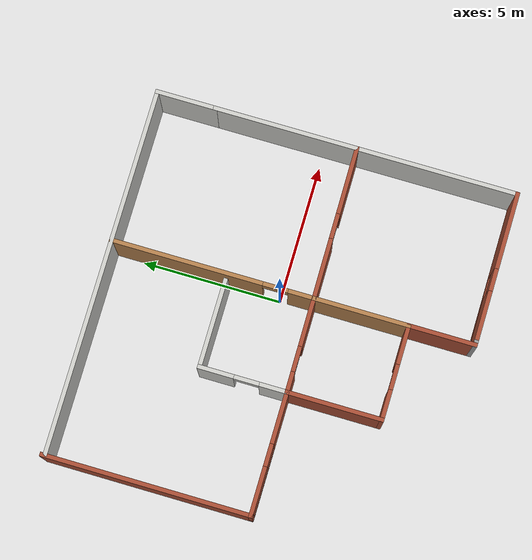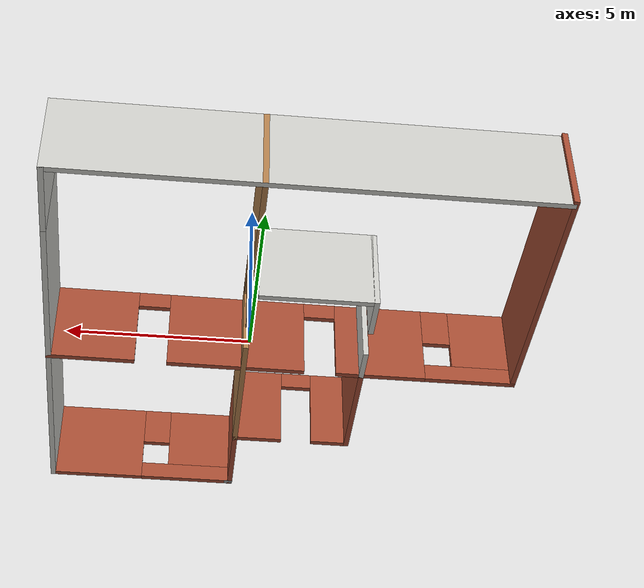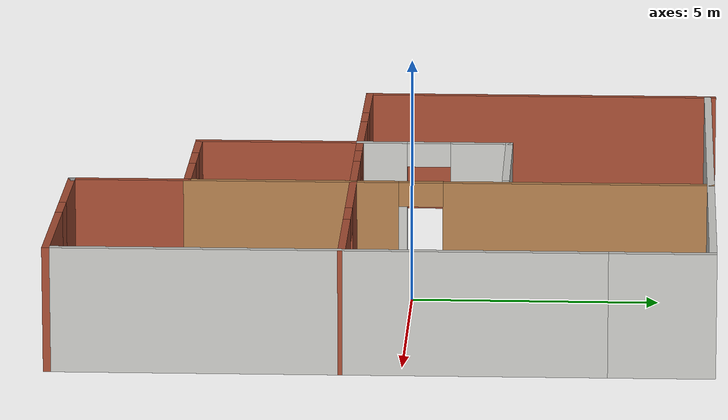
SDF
<?xml version='1.0'?>
<sdf version='1.6'>
  <model name='Building'>
    <pose frame=''>-1.04111 -0.383958 0 0 -0 0</pose>
    <link name='Wall_0'>
      <collision name='Wall_0_Collision'>
        <geometry>
          <box>
            <size>13.25 0.15 2.5</size>
          </box>
        </geometry>
        <pose frame=''>0 0 1.25 0 -0 0</pose>
      </collision>
      <visual name='Wall_0_Visual'>
        <pose frame=''>0 0 1.25 0 -0 0</pose>
        <geometry>
          <box>
            <size>13.25 0.15 2.5</size>
          </box>
        </geometry>
        <material>
          <script>
            <uri>file://media/materials/scripts/gazebo.material</uri>
            <name>Gazebo/CeilingTiled</name>
          </script>
          <ambient>0.435294 0.796078 0.67451 1</ambient>
        </material>
        <meta>
          <layer>0</layer>
        </meta>
      </visual>
      <pose frame=''>0.024727 6.425 0 0 -0 0</pose>
    </link>
    <link name='Wall_1'>
      <collision name='Wall_1_Collision'>
        <geometry>
          <box>
            <size>2.25 0.15 2.5</size>
          </box>
        </geometry>
        <pose frame=''>0 0 1.25 0 -0 0</pose>
      </collision>
      <visual name='Wall_1_Visual'>
        <pose frame=''>0 0 1.25 0 -0 0</pose>
        <geometry>
          <box>
            <size>2.25 0.15 2.5</size>
          </box>
        </geometry>
        <material>
          <script>
            <uri>file://media/materials/scripts/gazebo.material</uri>
            <name>Gazebo/CeilingTiled</name>
          </script>
          <ambient>0.760784 0.662745 0.627451 1</ambient>
        </material>
        <meta>
          <layer>0</layer>
        </meta>
      </visual>
      <pose frame=''>6.57473 5.375 0 0 0 -1.5708</pose>
    </link>
    <link name='Wall_11'>
      <pose frame=''>2.17478 -0.799463 0 0 0 -3.13579</pose>
      <visual name='Wall_11_Visual_0'>
        <pose frame=''>-3.24354 0 1.25 0 -0 0</pose>
        <geometry>
          <box>
            <size>2.46318 0.15 2.5</size>
          </box>
        </geometry>
        <material>
          <script>
            <uri>file://media/materials/scripts/gazebo.material</uri>
            <name>Gazebo/Bricks</name>
          </script>
          <ambient>1 1 1 1</ambient>
        </material>
        <meta>
          <layer>0</layer>
        </meta>
      </visual>
      <collision name='Wall_11_Collision_0'>
        <geometry>
          <box>
            <size>2.46318 0.15 2.5</size>
          </box>
        </geometry>
        <pose frame=''>-3.24354 0 1.25 0 -0 0</pose>
      </collision>
      <visual name='Wall_11_Visual_1'>
        <pose frame=''>0.828788 0 1.25 0 -0 0</pose>
        <geometry>
          <box>
            <size>3.88147 0.15 2.5</size>
          </box>
        </geometry>
        <material>
          <script>
            <uri>file://media/materials/scripts/gazebo.material</uri>
            <name>Gazebo/Bricks</name>
          </script>
          <ambient>1 1 1 1</ambient>
        </material>
        <meta>
          <layer>0</layer>
        </meta>
      </visual>
      <collision name='Wall_11_Collision_1'>
        <geometry>
          <box>
            <size>3.88147 0.15 2.5</size>
          </box>
        </geometry>
        <pose frame=''>0.828788 0 1.25 0 -0 0</pose>
      </collision>
      <visual name='Wall_11_Visual_2'>
        <pose frame=''>4.07233 0 1.25 0 -0 0</pose>
        <geometry>
          <box>
            <size>0.805607 0.15 2.5</size>
          </box>
        </geometry>
        <material>
          <script>
            <uri>file://media/materials/scripts/gazebo.material</uri>
            <name>Gazebo/Bricks</name>
          </script>
          <ambient>1 1 1 1</ambient>
        </material>
        <meta>
          <layer>0</layer>
        </meta>
      </visual>
      <collision name='Wall_11_Collision_2'>
        <geometry>
          <box>
            <size>0.805607 0.15 2.5</size>
          </box>
        </geometry>
        <pose frame=''>4.07233 0 1.25 0 -0 0</pose>
      </collision>
      <visual name='Wall_11_Visual_3'>
        <pose frame=''>-1.56195 0 2.25 0 -0 0</pose>
        <geometry>
          <box>
            <size>0.9 0.15 0.5</size>
          </box>
        </geometry>
        <material>
          <script>
            <uri>file://media/materials/scripts/gazebo.material</uri>
            <name>Gazebo/Bricks</name>
          </script>
          <ambient>1 1 1 1</ambient>
        </material>
        <meta>
          <layer>0</layer>
        </meta>
      </visual>
      <collision name='Wall_11_Collision_3'>
        <geometry>
          <box>
            <size>0.9 0.15 0.5</size>
          </box>
        </geometry>
        <pose frame=''>-1.56195 0 2.25 0 -0 0</pose>
      </collision>
      <visual name='Wall_11_Visual_4'>
        <pose frame=''>3.21952 0 2.25 0 -0 0</pose>
        <geometry>
          <box>
            <size>0.9 0.15 0.5</size>
          </box>
        </geometry>
        <material>
          <script>
            <uri>file://media/materials/scripts/gazebo.material</uri>
            <name>Gazebo/Bricks</name>
          </script>
          <ambient>1 1 1 1</ambient>
        </material>
        <meta>
          <layer>0</layer>
        </meta>
      </visual>
      <collision name='Wall_11_Collision_4'>
        <geometry>
          <box>
            <size>0.9 0.15 0.5</size>
          </box>
        </geometry>
        <pose frame=''>3.21952 0 2.25 0 -0 0</pose>
      </collision>
    </link>
    <link name='Wall_12'>
      <pose frame=''>-2.22527 0.725 0 0 -0 1.5708</pose>
      <visual name='Wall_12_Visual_0'>
        <pose frame=''>-1.09587 0 1.25 0 -0 0</pose>
        <geometry>
          <box>
            <size>1.05826 0.15 2.5</size>
          </box>
        </geometry>
        <material>
          <script>
            <uri>file://media/materials/scripts/gazebo.material</uri>
            <name>Gazebo/CeilingTiled</name>
          </script>
          <ambient>1 1 1 1</ambient>
        </material>
        <meta>
          <layer>0</layer>
        </meta>
      </visual>
      <collision name='Wall_12_Collision_0'>
        <geometry>
          <box>
            <size>1.05826 0.15 2.5</size>
          </box>
        </geometry>
        <pose frame=''>-1.09587 0 1.25 0 -0 0</pose>
      </collision>
      <visual name='Wall_12_Visual_1'>
        <pose frame=''>0.979128 0 1.25 0 -0 0</pose>
        <geometry>
          <box>
            <size>1.29174 0.15 2.5</size>
          </box>
        </geometry>
        <material>
          <script>
            <uri>file://media/materials/scripts/gazebo.material</uri>
            <name>Gazebo/CeilingTiled</name>
          </script>
          <ambient>1 1 1 1</ambient>
        </material>
        <meta>
          <layer>0</layer>
        </meta>
      </visual>
      <collision name='Wall_12_Collision_1'>
        <geometry>
          <box>
            <size>1.29174 0.15 2.5</size>
          </box>
        </geometry>
        <pose frame=''>0.979128 0 1.25 0 -0 0</pose>
      </collision>
      <visual name='Wall_12_Visual_2'>
        <pose frame=''>-0.116744 0 2.25 0 -0 0</pose>
        <geometry>
          <box>
            <size>0.9 0.15 0.5</size>
          </box>
        </geometry>
        <material>
          <script>
            <uri>file://media/materials/scripts/gazebo.material</uri>
            <name>Gazebo/CeilingTiled</name>
          </script>
          <ambient>1 1 1 1</ambient>
        </material>
        <meta>
          <layer>0</layer>
        </meta>
      </visual>
      <collision name='Wall_12_Collision_2'>
        <geometry>
          <box>
            <size>0.9 0.15 0.5</size>
          </box>
        </geometry>
        <pose frame=''>-0.116744 0 2.25 0 -0 0</pose>
      </collision>
    </link>
    <link name='Wall_13'>
      <collision name='Wall_13_Collision'>
        <geometry>
          <box>
            <size>3.25 0.15 2.5</size>
          </box>
        </geometry>
        <pose frame=''>0 0 1.25 0 -0 0</pose>
      </collision>
      <visual name='Wall_13_Visual'>
        <pose frame=''>0 0 1.25 0 -0 0</pose>
        <geometry>
          <box>
            <size>3.25 0.15 2.5</size>
          </box>
        </geometry>
        <material>
          <script>
            <uri>file://media/materials/scripts/gazebo.material</uri>
            <name>Gazebo/CeilingTiled</name>
          </script>
          <ambient>1 1 1 1</ambient>
        </material>
        <meta>
          <layer>0</layer>
        </meta>
      </visual>
      <pose frame=''>-0.675274 2.275 0 0 -0 0</pose>
    </link>
    <link name='Wall_15'>
      <pose frame=''>1.12473 1.125 0 0 -0 1.5708</pose>
      <visual name='Wall_15_Visual_0'>
        <pose frame=''>-3.19342 0 1.25 0 -0 0</pose>
        <geometry>
          <box>
            <size>4.36315 0.15 2.5</size>
          </box>
        </geometry>
        <material>
          <script>
            <uri>file://media/materials/scripts/gazebo.material</uri>
            <name>Gazebo/Wood</name>
          </script>
          <ambient>1 1 1 1</ambient>
        </material>
        <meta>
          <layer>0</layer>
        </meta>
      </visual>
      <collision name='Wall_15_Collision_0'>
        <geometry>
          <box>
            <size>4.36315 0.15 2.5</size>
          </box>
        </geometry>
        <pose frame=''>-3.19342 0 1.25 0 -0 0</pose>
      </collision>
      <visual name='Wall_15_Visual_1'>
        <pose frame=''>2.63158 0 1.25 0 -0 0</pose>
        <geometry>
          <box>
            <size>5.48685 0.15 2.5</size>
          </box>
        </geometry>
        <material>
          <script>
            <uri>file://media/materials/scripts/gazebo.material</uri>
            <name>Gazebo/Wood</name>
          </script>
          <ambient>1 1 1 1</ambient>
        </material>
        <meta>
          <layer>0</layer>
        </meta>
      </visual>
      <collision name='Wall_15_Collision_1'>
        <geometry>
          <box>
            <size>5.48685 0.15 2.5</size>
          </box>
        </geometry>
        <pose frame=''>2.63158 0 1.25 0 -0 0</pose>
      </collision>
      <visual name='Wall_15_Visual_2'>
        <pose frame=''>-0.561846 0 2.25 0 -0 0</pose>
        <geometry>
          <box>
            <size>0.9 0.15 0.5</size>
          </box>
        </geometry>
        <material>
          <script>
            <uri>file://media/materials/scripts/gazebo.material</uri>
            <name>Gazebo/Wood</name>
          </script>
          <ambient>1 1 1 1</ambient>
        </material>
        <meta>
          <layer>0</layer>
        </meta>
      </visual>
      <collision name='Wall_15_Collision_2'>
        <geometry>
          <box>
            <size>0.9 0.15 0.5</size>
          </box>
        </geometry>
        <pose frame=''>-0.561846 0 2.25 0 -0 0</pose>
      </collision>
    </link>
    <link name='Wall_2'>
      <collision name='Wall_2_Collision'>
        <geometry>
          <box>
            <size>11 0.15 2.5</size>
          </box>
        </geometry>
        <pose frame=''>0 0 1.25 0 -0 0</pose>
      </collision>
      <visual name='Wall_2_Visual'>
        <pose frame=''>0 0 1.25 0 -0 0</pose>
        <geometry>
          <box>
            <size>11 0.15 2.5</size>
          </box>
        </geometry>
        <material>
          <script>
            <uri>file://media/materials/scripts/gazebo.material</uri>
            <name>Gazebo/CeilingTiled</name>
          </script>
          <ambient>0.760784 0.662745 0.627451 1</ambient>
        </material>
        <meta>
          <layer>0</layer>
        </meta>
      </visual>
      <pose frame=''>6.57473 -1.1 0 0 0 -1.5708</pose>
    </link>
    <link name='Wall_3'>
      <pose frame=''>3.89973 -6.525 0 0 -0 3.14159</pose>
      <visual name='Wall_3_Visual_0'>
        <pose frame=''>-1.35798 0 1.25 0 -0 0</pose>
        <geometry>
          <box>
            <size>2.78404 0.15 2.5</size>
          </box>
        </geometry>
        <material>
          <script>
            <uri>file://media/materials/scripts/gazebo.material</uri>
            <name>Gazebo/Bricks</name>
          </script>
          <ambient>1 1 1 1</ambient>
        </material>
        <meta>
          <layer>0</layer>
        </meta>
      </visual>
      <collision name='Wall_3_Collision_0'>
        <geometry>
          <box>
            <size>2.78404 0.15 2.5</size>
          </box>
        </geometry>
        <pose frame=''>-1.35798 0 1.25 0 -0 0</pose>
      </collision>
      <visual name='Wall_3_Visual_1'>
        <pose frame=''>1.39202 0 0.25 0 -0 0</pose>
        <geometry>
          <box>
            <size>2.71596 0.15 0.5</size>
          </box>
        </geometry>
        <material>
          <script>
            <uri>file://media/materials/scripts/gazebo.material</uri>
            <name>Gazebo/Bricks</name>
          </script>
          <ambient>1 1 1 1</ambient>
        </material>
        <meta>
          <layer>0</layer>
        </meta>
      </visual>
      <collision name='Wall_3_Collision_1'>
        <geometry>
          <box>
            <size>2.71596 0.15 0.5</size>
          </box>
        </geometry>
        <pose frame=''>1.39202 0 0.25 0 -0 0</pose>
      </collision>
      <visual name='Wall_3_Visual_2'>
        <pose frame=''>1.79202 0 1.5 0 -0 0</pose>
        <geometry>
          <box>
            <size>1.91596 0.15 2</size>
          </box>
        </geometry>
        <material>
          <script>
            <uri>file://media/materials/scripts/gazebo.material</uri>
            <name>Gazebo/Bricks</name>
          </script>
          <ambient>1 1 1 1</ambient>
        </material>
        <meta>
          <layer>0</layer>
        </meta>
      </visual>
      <collision name='Wall_3_Collision_2'>
        <geometry>
          <box>
            <size>1.91596 0.15 2</size>
          </box>
        </geometry>
        <pose frame=''>1.79202 0 1.5 0 -0 0</pose>
      </collision>
      <visual name='Wall_3_Visual_3'>
        <pose frame=''>0.434036 0 1.9 0 -0 0</pose>
        <geometry>
          <box>
            <size>0.8 0.15 1.2</size>
          </box>
        </geometry>
        <material>
          <script>
            <uri>file://media/materials/scripts/gazebo.material</uri>
            <name>Gazebo/Bricks</name>
          </script>
          <ambient>1 1 1 1</ambient>
        </material>
        <meta>
          <layer>0</layer>
        </meta>
      </visual>
      <collision name='Wall_3_Collision_3'>
        <geometry>
          <box>
            <size>0.8 0.15 1.2</size>
          </box>
        </geometry>
        <pose frame=''>0.434036 0 1.9 0 -0 0</pose>
      </collision>
    </link>
    <link name='Wall_4'>
      <collision name='Wall_4_Collision'>
        <geometry>
          <box>
            <size>0.25 0.15 2.5</size>
          </box>
        </geometry>
        <pose frame=''>0 0 1.25 0 -0 0</pose>
      </collision>
      <visual name='Wall_4_Visual'>
        <pose frame=''>0 0 1.25 0 -0 0</pose>
        <geometry>
          <box>
            <size>0.25 0.15 2.5</size>
          </box>
        </geometry>
        <material>
          <script>
            <uri>file://media/materials/scripts/gazebo.material</uri>
            <name>Gazebo/Grey</name>
          </script>
          <ambient>1 1 1 1</ambient>
        </material>
        <meta>
          <layer>0</layer>
        </meta>
      </visual>
      <pose frame=''>1.17473 -6.525 0 0 -0 3.14159</pose>
    </link>
    <link name='Wall_5'>
      <collision name='Wall_5_Collision'>
        <geometry>
          <box>
            <size>2.5 0.15 2.5</size>
          </box>
        </geometry>
        <pose frame=''>0 0 1.25 0 -0 0</pose>
      </collision>
      <visual name='Wall_5_Visual'>
        <pose frame=''>0 0 1.25 0 -0 0</pose>
        <geometry>
          <box>
            <size>2.5 0.15 2.5</size>
          </box>
        </geometry>
        <material>
          <script>
            <uri>file://media/materials/scripts/gazebo.material</uri>
            <name>Gazebo/Bricks</name>
          </script>
          <ambient>1 1 1 1</ambient>
        </material>
        <meta>
          <layer>0</layer>
        </meta>
      </visual>
      <pose frame=''>1.12473 -5.35 0 0 -0 1.5708</pose>
    </link>
    <link name='Wall_6'>
      <pose frame=''>-0.550274 -4.175 0 0 -0 3.14159</pose>
      <visual name='Wall_6_Visual_0'>
        <pose frame=''>-1.02198 0 1.25 0 -0 0</pose>
        <geometry>
          <box>
            <size>1.45604 0.15 2.5</size>
          </box>
        </geometry>
        <material>
          <script>
            <uri>file://media/materials/scripts/gazebo.material</uri>
            <name>Gazebo/Bricks</name>
          </script>
          <ambient>1 1 1 1</ambient>
        </material>
        <meta>
          <layer>0</layer>
        </meta>
      </visual>
      <collision name='Wall_6_Collision_0'>
        <geometry>
          <box>
            <size>1.45604 0.15 2.5</size>
          </box>
        </geometry>
        <pose frame=''>-1.02198 0 1.25 0 -0 0</pose>
      </collision>
      <visual name='Wall_6_Visual_1'>
        <pose frame=''>1.17802 0 1.25 0 -0 0</pose>
        <geometry>
          <box>
            <size>1.14396 0.15 2.5</size>
          </box>
        </geometry>
        <material>
          <script>
            <uri>file://media/materials/scripts/gazebo.material</uri>
            <name>Gazebo/Bricks</name>
          </script>
          <ambient>1 1 1 1</ambient>
        </material>
        <meta>
          <layer>0</layer>
        </meta>
      </visual>
      <collision name='Wall_6_Collision_1'>
        <geometry>
          <box>
            <size>1.14396 0.15 2.5</size>
          </box>
        </geometry>
        <pose frame=''>1.17802 0 1.25 0 -0 0</pose>
      </collision>
      <visual name='Wall_6_Visual_2'>
        <pose frame=''>0.156044 0 2.25 0 -0 0</pose>
        <geometry>
          <box>
            <size>0.9 0.15 0.5</size>
          </box>
        </geometry>
        <material>
          <script>
            <uri>file://media/materials/scripts/gazebo.material</uri>
            <name>Gazebo/Bricks</name>
          </script>
          <ambient>1 1 1 1</ambient>
        </material>
        <meta>
          <layer>0</layer>
        </meta>
      </visual>
      <collision name='Wall_6_Collision_2'>
        <geometry>
          <box>
            <size>0.9 0.15 0.5</size>
          </box>
        </geometry>
        <pose frame=''>0.156044 0 2.25 0 -0 0</pose>
      </collision>
    </link>
    <link name='Wall_7'>
      <collision name='Wall_7_Collision'>
        <geometry>
          <box>
            <size>3.5 0.15 2.5</size>
          </box>
        </geometry>
        <pose frame=''>0 0 1.25 0 -0 0</pose>
      </collision>
      <visual name='Wall_7_Visual'>
        <pose frame=''>0 0 1.25 0 -0 0</pose>
        <geometry>
          <box>
            <size>3.5 0.15 2.5</size>
          </box>
        </geometry>
        <material>
          <script>
            <uri>file://media/materials/scripts/gazebo.material</uri>
            <name>Gazebo/Bricks</name>
          </script>
          <ambient>1 1 1 1</ambient>
        </material>
        <meta>
          <layer>0</layer>
        </meta>
      </visual>
      <pose frame=''>-2.22527 -2.5 0 0 -0 1.5708</pose>
    </link>
    <link name='Wall_8'>
      <pose frame=''>-4.40027 -0.825 0 0 -0 3.14159</pose>
      <visual name='Wall_8_Visual_0'>
        <pose frame=''>-1.30021 0 1.25 0 -0 0</pose>
        <geometry>
          <box>
            <size>1.89958 0.15 2.5</size>
          </box>
        </geometry>
        <material>
          <script>
            <uri>file://media/materials/scripts/gazebo.material</uri>
            <name>Gazebo/Bricks</name>
          </script>
          <ambient>1 1 1 1</ambient>
        </material>
        <meta>
          <layer>0</layer>
        </meta>
      </visual>
      <collision name='Wall_8_Collision_0'>
        <geometry>
          <box>
            <size>1.89958 0.15 2.5</size>
          </box>
        </geometry>
        <pose frame=''>-1.30021 0 1.25 0 -0 0</pose>
      </collision>
      <visual name='Wall_8_Visual_1'>
        <pose frame=''>0.949788 0 0.25 0 -0 0</pose>
        <geometry>
          <box>
            <size>2.60042 0.15 0.5</size>
          </box>
        </geometry>
        <material>
          <script>
            <uri>file://media/materials/scripts/gazebo.material</uri>
            <name>Gazebo/Bricks</name>
          </script>
          <ambient>1 1 1 1</ambient>
        </material>
        <meta>
          <layer>0</layer>
        </meta>
      </visual>
      <collision name='Wall_8_Collision_1'>
        <geometry>
          <box>
            <size>2.60042 0.15 0.5</size>
          </box>
        </geometry>
        <pose frame=''>0.949788 0 0.25 0 -0 0</pose>
      </collision>
      <visual name='Wall_8_Visual_2'>
        <pose frame=''>1.34979 0 1.5 0 -0 0</pose>
        <geometry>
          <box>
            <size>1.80042 0.15 2</size>
          </box>
        </geometry>
        <material>
          <script>
            <uri>file://media/materials/scripts/gazebo.material</uri>
            <name>Gazebo/Bricks</name>
          </script>
          <ambient>1 1 1 1</ambient>
        </material>
        <meta>
          <layer>0</layer>
        </meta>
      </visual>
      <collision name='Wall_8_Collision_2'>
        <geometry>
          <box>
            <size>1.80042 0.15 2</size>
          </box>
        </geometry>
        <pose frame=''>1.34979 0 1.5 0 -0 0</pose>
      </collision>
      <visual name='Wall_8_Visual_3'>
        <pose frame=''>0.049577 0 1.9 0 -0 0</pose>
        <geometry>
          <box>
            <size>0.8 0.15 1.2</size>
          </box>
        </geometry>
        <material>
          <script>
            <uri>file://media/materials/scripts/gazebo.material</uri>
            <name>Gazebo/Bricks</name>
          </script>
          <ambient>1 1 1 1</ambient>
        </material>
        <meta>
          <layer>0</layer>
        </meta>
      </visual>
      <collision name='Wall_8_Collision_3'>
        <geometry>
          <box>
            <size>0.8 0.15 1.2</size>
          </box>
        </geometry>
        <pose frame=''>0.049577 0 1.9 0 -0 0</pose>
      </collision>
    </link>
    <link name='Wall_9'>
      <collision name='Wall_9_Collision'>
        <geometry>
          <box>
            <size>7.5 0.15 2.5</size>
          </box>
        </geometry>
        <pose frame=''>0 0 1.25 0 -0 0</pose>
      </collision>
      <visual name='Wall_9_Visual'>
        <pose frame=''>0 0 1.25 0 -0 0</pose>
        <geometry>
          <box>
            <size>7.5 0.15 2.5</size>
          </box>
        </geometry>
        <material>
          <script>
            <uri>file://media/materials/scripts/gazebo.material</uri>
            <name>Gazebo/Bricks</name>
          </script>
          <ambient>1 1 1 1</ambient>
        </material>
        <meta>
          <layer>0</layer>
        </meta>
      </visual>
      <pose frame=''>-6.57527 2.85 0 0 -0 1.5708</pose>
    </link>
    <static>1</static>
  </model>
</sdf>
